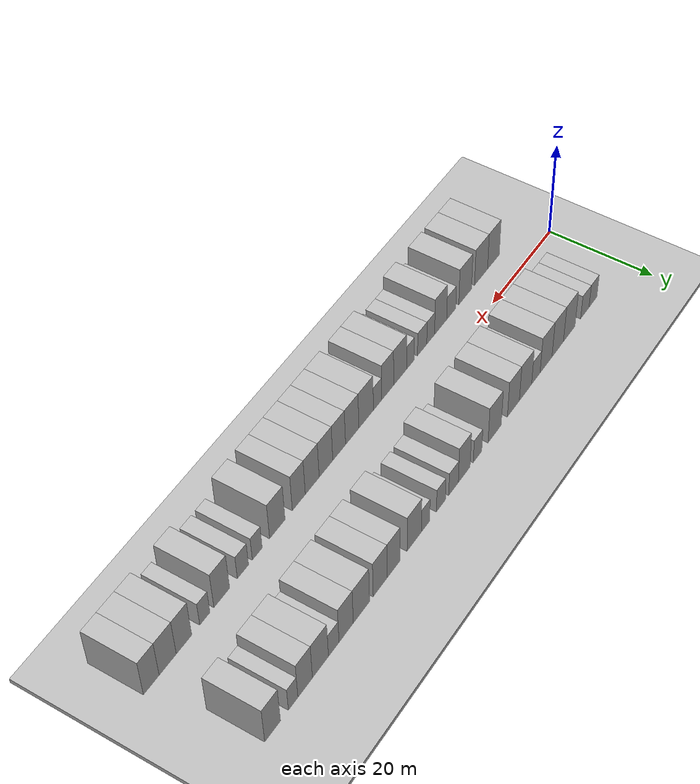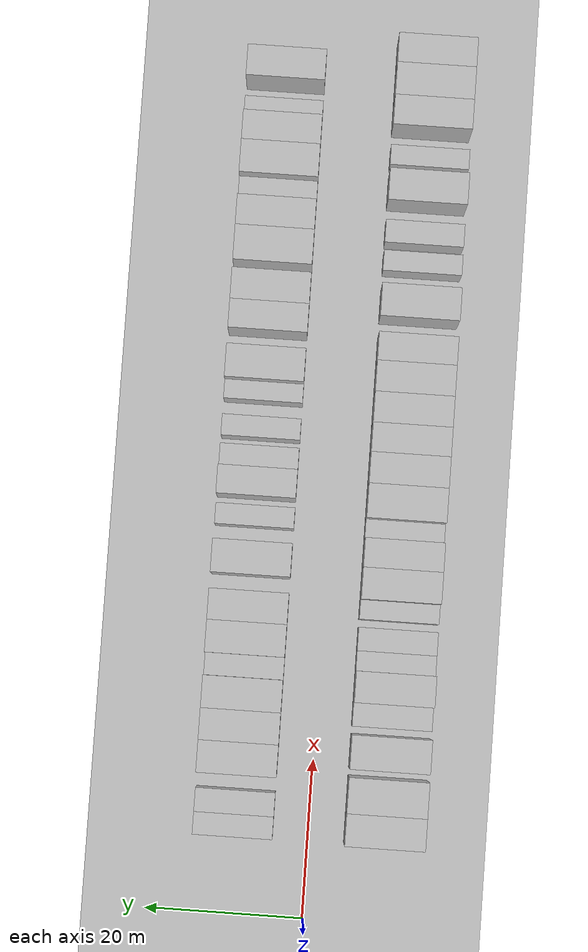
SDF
<sdf version="1.6">
 <world name="default">
  <include><name>ground_plane_1</name><uri>model://HANNAS_ground_plane</uri></include>
  <include>
   <name>ground_plane_2</name>
   <uri>model://HANNAS_ground_plane</uri>
   <pose>100 0 0  0 0 0</pose>
  </include>
  <model name="building_1">
   <static>1</static>
   <pose>11.4120 9.5000 0 0.000000 0.000000 1.570796</pose>
   <link name="link">
    <pose>0 0 3.00 0 0 0</pose>
    <collision name="collision"><geometry><box><size>10.0000 2.8240 6.0000</size></box></geometry></collision>
    <visual name="visual">
     <cast_shadows>0</cast_shadows>
     <geometry><box><size>10.0000 2.8240 6.0000</size></box></geometry>
     <material>
      <script>
       <uri>model://HANNAS_wall/materials/scripts</uri>
       <uri>model://HANNAS_wall/materials/textures</uri>
       <name>vrc/HANNAS_wall</name>
      </script>
     </material>
    </visual>
   </link>
  </model>
  <model name="building_2">
   <static>1</static>
   <pose>14.3173 9.5000 0 0.000000 0.000000 1.570796</pose>
   <link name="link">
    <pose>0 0 3.00 0 0 0</pose>
    <collision name="collision"><geometry><box><size>10.0000 2.9866 6.0000</size></box></geometry></collision>
    <visual name="visual">
     <cast_shadows>0</cast_shadows>
     <geometry><box><size>10.0000 2.9866 6.0000</size></box></geometry>
     <material>
      <script>
       <uri>model://HANNAS_wall/materials/scripts</uri>
       <uri>model://HANNAS_wall/materials/textures</uri>
       <name>vrc/HANNAS_wall</name>
      </script>
     </material>
    </visual>
   </link>
  </model>
  <model name="building_3">
   <static>1</static>
   <pose>19.8253 9.5000 0 0.000000 0.000000 1.570796</pose>
   <link name="link">
    <pose>0 0 4.50 0 0 0</pose>
    <collision name="collision"><geometry><box><size>10.0000 4.0295 9.0000</size></box></geometry></collision>
    <visual name="visual">
     <cast_shadows>0</cast_shadows>
     <geometry><box><size>10.0000 4.0295 9.0000</size></box></geometry>
     <material>
      <script>
       <uri>model://HANNAS_wall/materials/scripts</uri>
       <uri>model://HANNAS_wall/materials/textures</uri>
       <name>vrc/HANNAS_wall</name>
      </script>
     </material>
    </visual>
   </link>
  </model>
  <model name="building_4">
   <static>1</static>
   <pose>23.8167 9.5000 0 0.000000 0.000000 1.570796</pose>
   <link name="link">
    <pose>0 0 4.50 0 0 0</pose>
    <collision name="collision"><geometry><box><size>10.0000 3.9533 9.0000</size></box></geometry></collision>
    <visual name="visual">
     <cast_shadows>0</cast_shadows>
     <geometry><box><size>10.0000 3.9533 9.0000</size></box></geometry>
     <material>
      <script>
       <uri>model://HANNAS_wall/materials/scripts</uri>
       <uri>model://HANNAS_wall/materials/textures</uri>
       <name>vrc/HANNAS_wall</name>
      </script>
     </material>
    </visual>
   </link>
  </model>
  <model name="building_5">
   <static>1</static>
   <pose>27.8208 9.5000 0 0.000000 0.000000 1.570796</pose>
   <link name="link">
    <pose>0 0 4.50 0 0 0</pose>
    <collision name="collision"><geometry><box><size>10.0000 4.0550 9.0000</size></box></geometry></collision>
    <visual name="visual">
     <cast_shadows>0</cast_shadows>
     <geometry><box><size>10.0000 4.0550 9.0000</size></box></geometry>
     <material>
      <script>
       <uri>model://HANNAS_wall/materials/scripts</uri>
       <uri>model://HANNAS_wall/materials/textures</uri>
       <name>vrc/HANNAS_wall</name>
      </script>
     </material>
    </visual>
   </link>
  </model>
  <model name="building_6">
   <static>1</static>
   <pose>31.2606 9.5000 0 0.000000 0.000000 1.570796</pose>
   <link name="link">
    <pose>0 0 3.00 0 0 0</pose>
    <collision name="collision"><geometry><box><size>10.0000 2.8246 6.0000</size></box></geometry></collision>
    <visual name="visual">
     <cast_shadows>0</cast_shadows>
     <geometry><box><size>10.0000 2.8246 6.0000</size></box></geometry>
     <material>
      <script>
       <uri>model://HANNAS_wall/materials/scripts</uri>
       <uri>model://HANNAS_wall/materials/textures</uri>
       <name>vrc/HANNAS_wall</name>
      </script>
     </material>
    </visual>
   </link>
  </model>
  <model name="building_7">
   <static>1</static>
   <pose>34.7075 9.5000 0 0.000000 0.000000 1.570796</pose>
   <link name="link">
    <pose>0 0 4.50 0 0 0</pose>
    <collision name="collision"><geometry><box><size>10.0000 4.0691 9.0000</size></box></geometry></collision>
    <visual name="visual">
     <cast_shadows>0</cast_shadows>
     <geometry><box><size>10.0000 4.0691 9.0000</size></box></geometry>
     <material>
      <script>
       <uri>model://HANNAS_wall/materials/scripts</uri>
       <uri>model://HANNAS_wall/materials/textures</uri>
       <name>vrc/HANNAS_wall</name>
      </script>
     </material>
    </visual>
   </link>
  </model>
  <model name="building_8">
   <static>1</static>
   <pose>38.6930 9.5000 0 0.000000 0.000000 1.570796</pose>
   <link name="link">
    <pose>0 0 4.50 0 0 0</pose>
    <collision name="collision"><geometry><box><size>10.0000 3.9020 9.0000</size></box></geometry></collision>
    <visual name="visual">
     <cast_shadows>0</cast_shadows>
     <geometry><box><size>10.0000 3.9020 9.0000</size></box></geometry>
     <material>
      <script>
       <uri>model://HANNAS_wall/materials/scripts</uri>
       <uri>model://HANNAS_wall/materials/textures</uri>
       <name>vrc/HANNAS_wall</name>
      </script>
     </material>
    </visual>
   </link>
  </model>
  <model name="building_9">
   <static>1</static>
   <pose>44.7458 9.5000 0 0.000000 0.000000 1.570796</pose>
   <link name="link">
    <pose>0 0 4.50 0 0 0</pose>
    <collision name="collision"><geometry><box><size>10.0000 4.2036 9.0000</size></box></geometry></collision>
    <visual name="visual">
     <cast_shadows>0</cast_shadows>
     <geometry><box><size>10.0000 4.2036 9.0000</size></box></geometry>
     <material>
      <script>
       <uri>model://HANNAS_wall/materials/scripts</uri>
       <uri>model://HANNAS_wall/materials/textures</uri>
       <name>vrc/HANNAS_wall</name>
      </script>
     </material>
    </visual>
   </link>
  </model>
  <model name="building_10">
   <static>1</static>
   <pose>50.1704 9.5000 0 0.000000 0.000000 1.570796</pose>
   <link name="link">
    <pose>0 0 3.00 0 0 0</pose>
    <collision name="collision"><geometry><box><size>10.0000 2.6455 6.0000</size></box></geometry></collision>
    <visual name="visual">
     <cast_shadows>0</cast_shadows>
     <geometry><box><size>10.0000 2.6455 6.0000</size></box></geometry>
     <material>
      <script>
       <uri>model://HANNAS_wall/materials/scripts</uri>
       <uri>model://HANNAS_wall/materials/textures</uri>
       <name>vrc/HANNAS_wall</name>
      </script>
     </material>
    </visual>
   </link>
  </model>
  <model name="building_11">
   <static>1</static>
   <pose>54.3020 9.5000 0 0.000000 0.000000 1.570796</pose>
   <link name="link">
    <pose>0 0 4.50 0 0 0</pose>
    <collision name="collision"><geometry><box><size>10.0000 3.6177 9.0000</size></box></geometry></collision>
    <visual name="visual">
     <cast_shadows>0</cast_shadows>
     <geometry><box><size>10.0000 3.6177 9.0000</size></box></geometry>
     <material>
      <script>
       <uri>model://HANNAS_wall/materials/scripts</uri>
       <uri>model://HANNAS_wall/materials/textures</uri>
       <name>vrc/HANNAS_wall</name>
      </script>
     </material>
    </visual>
   </link>
  </model>
  <model name="building_12">
   <static>1</static>
   <pose>57.5705 9.5000 0 0.000000 0.000000 1.570796</pose>
   <link name="link">
    <pose>0 0 3.00 0 0 0</pose>
    <collision name="collision"><geometry><box><size>10.0000 2.9192 6.0000</size></box></geometry></collision>
    <visual name="visual">
     <cast_shadows>0</cast_shadows>
     <geometry><box><size>10.0000 2.9192 6.0000</size></box></geometry>
     <material>
      <script>
       <uri>model://HANNAS_wall/materials/scripts</uri>
       <uri>model://HANNAS_wall/materials/textures</uri>
       <name>vrc/HANNAS_wall</name>
      </script>
     </material>
    </visual>
   </link>
  </model>
  <model name="building_13">
   <static>1</static>
   <pose>61.3767 9.5000 0 0.000000 0.000000 1.570796</pose>
   <link name="link">
    <pose>0 0 3.00 0 0 0</pose>
    <collision name="collision"><geometry><box><size>10.0000 2.6934 6.0000</size></box></geometry></collision>
    <visual name="visual">
     <cast_shadows>0</cast_shadows>
     <geometry><box><size>10.0000 2.6934 6.0000</size></box></geometry>
     <material>
      <script>
       <uri>model://HANNAS_wall/materials/scripts</uri>
       <uri>model://HANNAS_wall/materials/textures</uri>
       <name>vrc/HANNAS_wall</name>
      </script>
     </material>
    </visual>
   </link>
  </model>
  <model name="building_14">
   <static>1</static>
   <pose>65.9254 9.5000 0 0.000000 0.000000 1.570796</pose>
   <link name="link">
    <pose>0 0 3.00 0 0 0</pose>
    <collision name="collision"><geometry><box><size>10.0000 2.4040 6.0000</size></box></geometry></collision>
    <visual name="visual">
     <cast_shadows>0</cast_shadows>
     <geometry><box><size>10.0000 2.4040 6.0000</size></box></geometry>
     <material>
      <script>
       <uri>model://HANNAS_wall/materials/scripts</uri>
       <uri>model://HANNAS_wall/materials/textures</uri>
       <name>vrc/HANNAS_wall</name>
      </script>
     </material>
    </visual>
   </link>
  </model>
  <model name="building_15">
   <static>1</static>
   <pose>69.2323 9.5000 0 0.000000 0.000000 1.570796</pose>
   <link name="link">
    <pose>0 0 4.50 0 0 0</pose>
    <collision name="collision"><geometry><box><size>10.0000 4.2098 9.0000</size></box></geometry></collision>
    <visual name="visual">
     <cast_shadows>0</cast_shadows>
     <geometry><box><size>10.0000 4.2098 9.0000</size></box></geometry>
     <material>
      <script>
       <uri>model://HANNAS_wall/materials/scripts</uri>
       <uri>model://HANNAS_wall/materials/textures</uri>
       <name>vrc/HANNAS_wall</name>
      </script>
     </material>
    </visual>
   </link>
  </model>
  <model name="building_16">
   <static>1</static>
   <pose>75.1610 9.5000 0 0.000000 0.000000 1.570796</pose>
   <link name="link">
    <pose>0 0 4.50 0 0 0</pose>
    <collision name="collision"><geometry><box><size>10.0000 3.6475 9.0000</size></box></geometry></collision>
    <visual name="visual">
     <cast_shadows>0</cast_shadows>
     <geometry><box><size>10.0000 3.6475 9.0000</size></box></geometry>
     <material>
      <script>
       <uri>model://HANNAS_wall/materials/scripts</uri>
       <uri>model://HANNAS_wall/materials/textures</uri>
       <name>vrc/HANNAS_wall</name>
      </script>
     </material>
    </visual>
   </link>
  </model>
  <model name="building_17">
   <static>1</static>
   <pose>78.9682 9.5000 0 0.000000 0.000000 1.570796</pose>
   <link name="link">
    <pose>0 0 4.50 0 0 0</pose>
    <collision name="collision"><geometry><box><size>10.0000 3.9669 9.0000</size></box></geometry></collision>
    <visual name="visual">
     <cast_shadows>0</cast_shadows>
     <geometry><box><size>10.0000 3.9669 9.0000</size></box></geometry>
     <material>
      <script>
       <uri>model://HANNAS_wall/materials/scripts</uri>
       <uri>model://HANNAS_wall/materials/textures</uri>
       <name>vrc/HANNAS_wall</name>
      </script>
     </material>
    </visual>
   </link>
  </model>
  <model name="building_18">
   <static>1</static>
   <pose>84.1796 9.5000 0 0.000000 0.000000 1.570796</pose>
   <link name="link">
    <pose>0 0 4.50 0 0 0</pose>
    <collision name="collision"><geometry><box><size>10.0000 4.4560 9.0000</size></box></geometry></collision>
    <visual name="visual">
     <cast_shadows>0</cast_shadows>
     <geometry><box><size>10.0000 4.4560 9.0000</size></box></geometry>
     <material>
      <script>
       <uri>model://HANNAS_wall/materials/scripts</uri>
       <uri>model://HANNAS_wall/materials/textures</uri>
       <name>vrc/HANNAS_wall</name>
      </script>
     </material>
    </visual>
   </link>
  </model>
  <model name="building_19">
   <static>1</static>
   <pose>88.3378 9.5000 0 0.000000 0.000000 1.570796</pose>
   <link name="link">
    <pose>0 0 4.50 0 0 0</pose>
    <collision name="collision"><geometry><box><size>10.0000 3.8603 9.0000</size></box></geometry></collision>
    <visual name="visual">
     <cast_shadows>0</cast_shadows>
     <geometry><box><size>10.0000 3.8603 9.0000</size></box></geometry>
     <material>
      <script>
       <uri>model://HANNAS_wall/materials/scripts</uri>
       <uri>model://HANNAS_wall/materials/textures</uri>
       <name>vrc/HANNAS_wall</name>
      </script>
     </material>
    </visual>
   </link>
  </model>
  <model name="building_20">
   <static>1</static>
   <pose>91.6720 9.5000 0 0.000000 0.000000 1.570796</pose>
   <link name="link">
    <pose>0 0 3.00 0 0 0</pose>
    <collision name="collision"><geometry><box><size>10.0000 2.8080 6.0000</size></box></geometry></collision>
    <visual name="visual">
     <cast_shadows>0</cast_shadows>
     <geometry><box><size>10.0000 2.8080 6.0000</size></box></geometry>
     <material>
      <script>
       <uri>model://HANNAS_wall/materials/scripts</uri>
       <uri>model://HANNAS_wall/materials/textures</uri>
       <name>vrc/HANNAS_wall</name>
      </script>
     </material>
    </visual>
   </link>
  </model>
  <model name="building_21">
   <static>1</static>
   <pose>95.1774 9.5000 0 0.000000 0.000000 1.570796</pose>
   <link name="link">
    <pose>0 0 4.50 0 0 0</pose>
    <collision name="collision"><geometry><box><size>10.0000 4.2028 9.0000</size></box></geometry></collision>
    <visual name="visual">
     <cast_shadows>0</cast_shadows>
     <geometry><box><size>10.0000 4.2028 9.0000</size></box></geometry>
     <material>
      <script>
       <uri>model://HANNAS_wall/materials/scripts</uri>
       <uri>model://HANNAS_wall/materials/textures</uri>
       <name>vrc/HANNAS_wall</name>
      </script>
     </material>
    </visual>
   </link>
  </model>
  <model name="building_22">
   <static>1</static>
   <pose>99.1581 9.5000 0 0.000000 0.000000 1.570796</pose>
   <link name="link">
    <pose>0 0 4.50 0 0 0</pose>
    <collision name="collision"><geometry><box><size>10.0000 3.7587 9.0000</size></box></geometry></collision>
    <visual name="visual">
     <cast_shadows>0</cast_shadows>
     <geometry><box><size>10.0000 3.7587 9.0000</size></box></geometry>
     <material>
      <script>
       <uri>model://HANNAS_wall/materials/scripts</uri>
       <uri>model://HANNAS_wall/materials/textures</uri>
       <name>vrc/HANNAS_wall</name>
      </script>
     </material>
    </visual>
   </link>
  </model>
  <model name="building_23">
   <static>1</static>
   <pose>102.2509 9.5000 0 0.000000 0.000000 1.570796</pose>
   <link name="link">
    <pose>0 0 3.00 0 0 0</pose>
    <collision name="collision"><geometry><box><size>10.0000 2.4268 6.0000</size></box></geometry></collision>
    <visual name="visual">
     <cast_shadows>0</cast_shadows>
     <geometry><box><size>10.0000 2.4268 6.0000</size></box></geometry>
     <material>
      <script>
       <uri>model://HANNAS_wall/materials/scripts</uri>
       <uri>model://HANNAS_wall/materials/textures</uri>
       <name>vrc/HANNAS_wall</name>
      </script>
     </material>
    </visual>
   </link>
  </model>
  <model name="building_24">
   <static>1</static>
   <pose>107.4302 9.5000 0 0.000000 0.000000 1.570796</pose>
   <link name="link">
    <pose>0 0 4.50 0 0 0</pose>
    <collision name="collision"><geometry><box><size>10.0000 3.9319 9.0000</size></box></geometry></collision>
    <visual name="visual">
     <cast_shadows>0</cast_shadows>
     <geometry><box><size>10.0000 3.9319 9.0000</size></box></geometry>
     <material>
      <script>
       <uri>model://HANNAS_wall/materials/scripts</uri>
       <uri>model://HANNAS_wall/materials/textures</uri>
       <name>vrc/HANNAS_wall</name>
      </script>
     </material>
    </visual>
   </link>
  </model>
  <model name="building_49">
   <static>1</static>
   <pose>12.0125 -9.5000 0 0.000000 0.000000 1.570796</pose>
   <link name="link">
    <pose>0 0 4.50 0 0 0</pose>
    <collision name="collision"><geometry><box><size>10.0000 4.0250 9.0000</size></box></geometry></collision>
    <visual name="visual">
     <cast_shadows>0</cast_shadows>
     <geometry><box><size>10.0000 4.0250 9.0000</size></box></geometry>
     <material>
      <script>
       <uri>model://HANNAS_wall/materials/scripts</uri>
       <uri>model://HANNAS_wall/materials/textures</uri>
       <name>vrc/HANNAS_wall</name>
      </script>
     </material>
    </visual>
   </link>
  </model>
  <model name="building_50">
   <static>1</static>
   <pose>16.2547 -9.5000 0 0.000000 0.000000 1.570796</pose>
   <link name="link">
    <pose>0 0 4.50 0 0 0</pose>
    <collision name="collision"><geometry><box><size>10.0000 4.4594 9.0000</size></box></geometry></collision>
    <visual name="visual">
     <cast_shadows>0</cast_shadows>
     <geometry><box><size>10.0000 4.4594 9.0000</size></box></geometry>
     <material>
      <script>
       <uri>model://HANNAS_wall/materials/scripts</uri>
       <uri>model://HANNAS_wall/materials/textures</uri>
       <name>vrc/HANNAS_wall</name>
      </script>
     </material>
    </visual>
   </link>
  </model>
  <model name="building_51">
   <static>1</static>
   <pose>21.6102 -9.5000 0 0.000000 0.000000 1.570796</pose>
   <link name="link">
    <pose>0 0 4.50 0 0 0</pose>
    <collision name="collision"><geometry><box><size>10.0000 4.2515 9.0000</size></box></geometry></collision>
    <visual name="visual">
     <cast_shadows>0</cast_shadows>
     <geometry><box><size>10.0000 4.2515 9.0000</size></box></geometry>
     <material>
      <script>
       <uri>model://HANNAS_wall/materials/scripts</uri>
       <uri>model://HANNAS_wall/materials/textures</uri>
       <name>vrc/HANNAS_wall</name>
      </script>
     </material>
    </visual>
   </link>
  </model>
  <model name="building_52">
   <static>1</static>
   <pose>26.2296 -9.5000 0 0.000000 0.000000 1.570796</pose>
   <link name="link">
    <pose>0 0 3.00 0 0 0</pose>
    <collision name="collision"><geometry><box><size>10.0000 2.9874 6.0000</size></box></geometry></collision>
    <visual name="visual">
     <cast_shadows>0</cast_shadows>
     <geometry><box><size>10.0000 2.9874 6.0000</size></box></geometry>
     <material>
      <script>
       <uri>model://HANNAS_wall/materials/scripts</uri>
       <uri>model://HANNAS_wall/materials/textures</uri>
       <name>vrc/HANNAS_wall</name>
      </script>
     </material>
    </visual>
   </link>
  </model>
  <model name="building_53">
   <static>1</static>
   <pose>29.6846 -9.5000 0 0.000000 0.000000 1.570796</pose>
   <link name="link">
    <pose>0 0 4.50 0 0 0</pose>
    <collision name="collision"><geometry><box><size>10.0000 3.9226 9.0000</size></box></geometry></collision>
    <visual name="visual">
     <cast_shadows>0</cast_shadows>
     <geometry><box><size>10.0000 3.9226 9.0000</size></box></geometry>
     <material>
      <script>
       <uri>model://HANNAS_wall/materials/scripts</uri>
       <uri>model://HANNAS_wall/materials/textures</uri>
       <name>vrc/HANNAS_wall</name>
      </script>
     </material>
    </visual>
   </link>
  </model>
  <model name="building_54">
   <static>1</static>
   <pose>32.9074 -9.5000 0 0.000000 0.000000 1.570796</pose>
   <link name="link">
    <pose>0 0 3.00 0 0 0</pose>
    <collision name="collision"><geometry><box><size>10.0000 2.5228 6.0000</size></box></geometry></collision>
    <visual name="visual">
     <cast_shadows>0</cast_shadows>
     <geometry><box><size>10.0000 2.5228 6.0000</size></box></geometry>
     <material>
      <script>
       <uri>model://HANNAS_wall/materials/scripts</uri>
       <uri>model://HANNAS_wall/materials/textures</uri>
       <name>vrc/HANNAS_wall</name>
      </script>
     </material>
    </visual>
   </link>
  </model>
  <model name="building_55">
   <static>1</static>
   <pose>35.6420 -9.5000 0 0.000000 0.000000 1.570796</pose>
   <link name="link">
    <pose>0 0 3.00 0 0 0</pose>
    <collision name="collision"><geometry><box><size>10.0000 2.9465 6.0000</size></box></geometry></collision>
    <visual name="visual">
     <cast_shadows>0</cast_shadows>
     <geometry><box><size>10.0000 2.9465 6.0000</size></box></geometry>
     <material>
      <script>
       <uri>model://HANNAS_wall/materials/scripts</uri>
       <uri>model://HANNAS_wall/materials/textures</uri>
       <name>vrc/HANNAS_wall</name>
      </script>
     </material>
    </visual>
   </link>
  </model>
  <model name="building_56">
   <static>1</static>
   <pose>39.3429 -9.5000 0 0.000000 0.000000 1.570796</pose>
   <link name="link">
    <pose>0 0 3.00 0 0 0</pose>
    <collision name="collision"><geometry><box><size>10.0000 2.4554 6.0000</size></box></geometry></collision>
    <visual name="visual">
     <cast_shadows>0</cast_shadows>
     <geometry><box><size>10.0000 2.4554 6.0000</size></box></geometry>
     <material>
      <script>
       <uri>model://HANNAS_wall/materials/scripts</uri>
       <uri>model://HANNAS_wall/materials/textures</uri>
       <name>vrc/HANNAS_wall</name>
      </script>
     </material>
    </visual>
   </link>
  </model>
  <model name="building_57">
   <static>1</static>
   <pose>42.5651 -9.5000 0 0.000000 0.000000 1.570796</pose>
   <link name="link">
    <pose>0 0 4.50 0 0 0</pose>
    <collision name="collision"><geometry><box><size>10.0000 3.9889 9.0000</size></box></geometry></collision>
    <visual name="visual">
     <cast_shadows>0</cast_shadows>
     <geometry><box><size>10.0000 3.9889 9.0000</size></box></geometry>
     <material>
      <script>
       <uri>model://HANNAS_wall/materials/scripts</uri>
       <uri>model://HANNAS_wall/materials/textures</uri>
       <name>vrc/HANNAS_wall</name>
      </script>
     </material>
    </visual>
   </link>
  </model>
  <model name="building_58">
   <static>1</static>
   <pose>46.3990 -9.5000 0 0.000000 0.000000 1.570796</pose>
   <link name="link">
    <pose>0 0 4.50 0 0 0</pose>
    <collision name="collision"><geometry><box><size>10.0000 3.6790 9.0000</size></box></geometry></collision>
    <visual name="visual">
     <cast_shadows>0</cast_shadows>
     <geometry><box><size>10.0000 3.6790 9.0000</size></box></geometry>
     <material>
      <script>
       <uri>model://HANNAS_wall/materials/scripts</uri>
       <uri>model://HANNAS_wall/materials/textures</uri>
       <name>vrc/HANNAS_wall</name>
      </script>
     </material>
    </visual>
   </link>
  </model>
  <model name="building_59">
   <static>1</static>
   <pose>49.4803 -9.5000 0 0.000000 0.000000 1.570796</pose>
   <link name="link">
    <pose>0 0 3.00 0 0 0</pose>
    <collision name="collision"><geometry><box><size>10.0000 2.4836 6.0000</size></box></geometry></collision>
    <visual name="visual">
     <cast_shadows>0</cast_shadows>
     <geometry><box><size>10.0000 2.4836 6.0000</size></box></geometry>
     <material>
      <script>
       <uri>model://HANNAS_wall/materials/scripts</uri>
       <uri>model://HANNAS_wall/materials/textures</uri>
       <name>vrc/HANNAS_wall</name>
      </script>
     </material>
    </visual>
   </link>
  </model>
  <model name="building_60">
   <static>1</static>
   <pose>52.8970 -9.5000 0 0.000000 0.000000 1.570796</pose>
   <link name="link">
    <pose>0 0 4.50 0 0 0</pose>
    <collision name="collision"><geometry><box><size>10.0000 4.3498 9.0000</size></box></geometry></collision>
    <visual name="visual">
     <cast_shadows>0</cast_shadows>
     <geometry><box><size>10.0000 4.3498 9.0000</size></box></geometry>
     <material>
      <script>
       <uri>model://HANNAS_wall/materials/scripts</uri>
       <uri>model://HANNAS_wall/materials/textures</uri>
       <name>vrc/HANNAS_wall</name>
      </script>
     </material>
    </visual>
   </link>
  </model>
  <model name="building_61">
   <static>1</static>
   <pose>57.0367 -9.5000 0 0.000000 0.000000 1.570796</pose>
   <link name="link">
    <pose>0 0 4.50 0 0 0</pose>
    <collision name="collision"><geometry><box><size>10.0000 3.9296 9.0000</size></box></geometry></collision>
    <visual name="visual">
     <cast_shadows>0</cast_shadows>
     <geometry><box><size>10.0000 3.9296 9.0000</size></box></geometry>
     <material>
      <script>
       <uri>model://HANNAS_wall/materials/scripts</uri>
       <uri>model://HANNAS_wall/materials/textures</uri>
       <name>vrc/HANNAS_wall</name>
      </script>
     </material>
    </visual>
   </link>
  </model>
  <model name="building_62">
   <static>1</static>
   <pose>60.8553 -9.5000 0 0.000000 0.000000 1.570796</pose>
   <link name="link">
    <pose>0 0 4.50 0 0 0</pose>
    <collision name="collision"><geometry><box><size>10.0000 3.7076 9.0000</size></box></geometry></collision>
    <visual name="visual">
     <cast_shadows>0</cast_shadows>
     <geometry><box><size>10.0000 3.7076 9.0000</size></box></geometry>
     <material>
      <script>
       <uri>model://HANNAS_wall/materials/scripts</uri>
       <uri>model://HANNAS_wall/materials/textures</uri>
       <name>vrc/HANNAS_wall</name>
      </script>
     </material>
    </visual>
   </link>
  </model>
  <model name="building_63">
   <static>1</static>
   <pose>64.6545 -9.5000 0 0.000000 0.000000 1.570796</pose>
   <link name="link">
    <pose>0 0 4.50 0 0 0</pose>
    <collision name="collision"><geometry><box><size>10.0000 3.8907 9.0000</size></box></geometry></collision>
    <visual name="visual">
     <cast_shadows>0</cast_shadows>
     <geometry><box><size>10.0000 3.8907 9.0000</size></box></geometry>
     <material>
      <script>
       <uri>model://HANNAS_wall/materials/scripts</uri>
       <uri>model://HANNAS_wall/materials/textures</uri>
       <name>vrc/HANNAS_wall</name>
      </script>
     </material>
    </visual>
   </link>
  </model>
  <model name="building_64">
   <static>1</static>
   <pose>68.5563 -9.5000 0 0.000000 0.000000 1.570796</pose>
   <link name="link">
    <pose>0 0 4.50 0 0 0</pose>
    <collision name="collision"><geometry><box><size>10.0000 3.9128 9.0000</size></box></geometry></collision>
    <visual name="visual">
     <cast_shadows>0</cast_shadows>
     <geometry><box><size>10.0000 3.9128 9.0000</size></box></geometry>
     <material>
      <script>
       <uri>model://HANNAS_wall/materials/scripts</uri>
       <uri>model://HANNAS_wall/materials/textures</uri>
       <name>vrc/HANNAS_wall</name>
      </script>
     </material>
    </visual>
   </link>
  </model>
  <model name="building_65">
   <static>1</static>
   <pose>72.3182 -9.5000 0 0.000000 0.000000 1.570796</pose>
   <link name="link">
    <pose>0 0 4.50 0 0 0</pose>
    <collision name="collision"><geometry><box><size>10.0000 3.6110 9.0000</size></box></geometry></collision>
    <visual name="visual">
     <cast_shadows>0</cast_shadows>
     <geometry><box><size>10.0000 3.6110 9.0000</size></box></geometry>
     <material>
      <script>
       <uri>model://HANNAS_wall/materials/scripts</uri>
       <uri>model://HANNAS_wall/materials/textures</uri>
       <name>vrc/HANNAS_wall</name>
      </script>
     </material>
    </visual>
   </link>
  </model>
  <model name="building_66">
   <static>1</static>
   <pose>78.2149 -9.5000 0 0.000000 0.000000 1.570796</pose>
   <link name="link">
    <pose>0 0 4.50 0 0 0</pose>
    <collision name="collision"><geometry><box><size>10.0000 4.1823 9.0000</size></box></geometry></collision>
    <visual name="visual">
     <cast_shadows>0</cast_shadows>
     <geometry><box><size>10.0000 4.1823 9.0000</size></box></geometry>
     <material>
      <script>
       <uri>model://HANNAS_wall/materials/scripts</uri>
       <uri>model://HANNAS_wall/materials/textures</uri>
       <name>vrc/HANNAS_wall</name>
      </script>
     </material>
    </visual>
   </link>
  </model>
  <model name="building_67">
   <static>1</static>
   <pose>83.6147 -9.5000 0 0.000000 0.000000 1.570796</pose>
   <link name="link">
    <pose>0 0 3.00 0 0 0</pose>
    <collision name="collision"><geometry><box><size>10.0000 2.6173 6.0000</size></box></geometry></collision>
    <visual name="visual">
     <cast_shadows>0</cast_shadows>
     <geometry><box><size>10.0000 2.6173 6.0000</size></box></geometry>
     <material>
      <script>
       <uri>model://HANNAS_wall/materials/scripts</uri>
       <uri>model://HANNAS_wall/materials/textures</uri>
       <name>vrc/HANNAS_wall</name>
      </script>
     </material>
    </visual>
   </link>
  </model>
  <model name="building_68">
   <static>1</static>
   <pose>87.3883 -9.5000 0 0.000000 0.000000 1.570796</pose>
   <link name="link">
    <pose>0 0 3.00 0 0 0</pose>
    <collision name="collision"><geometry><box><size>10.0000 2.9300 6.0000</size></box></geometry></collision>
    <visual name="visual">
     <cast_shadows>0</cast_shadows>
     <geometry><box><size>10.0000 2.9300 6.0000</size></box></geometry>
     <material>
      <script>
       <uri>model://HANNAS_wall/materials/scripts</uri>
       <uri>model://HANNAS_wall/materials/textures</uri>
       <name>vrc/HANNAS_wall</name>
      </script>
     </material>
    </visual>
   </link>
  </model>
  <model name="building_69">
   <static>1</static>
   <pose>92.8749 -9.5000 0 0.000000 0.000000 1.570796</pose>
   <link name="link">
    <pose>0 0 4.50 0 0 0</pose>
    <collision name="collision"><geometry><box><size>10.0000 4.0431 9.0000</size></box></geometry></collision>
    <visual name="visual">
     <cast_shadows>0</cast_shadows>
     <geometry><box><size>10.0000 4.0431 9.0000</size></box></geometry>
     <material>
      <script>
       <uri>model://HANNAS_wall/materials/scripts</uri>
       <uri>model://HANNAS_wall/materials/textures</uri>
       <name>vrc/HANNAS_wall</name>
      </script>
     </material>
    </visual>
   </link>
  </model>
  <model name="building_70">
   <static>1</static>
   <pose>97.1820 -9.5000 0 0.000000 0.000000 1.570796</pose>
   <link name="link">
    <pose>0 0 3.00 0 0 0</pose>
    <collision name="collision"><geometry><box><size>10.0000 2.5712 6.0000</size></box></geometry></collision>
    <visual name="visual">
     <cast_shadows>0</cast_shadows>
     <geometry><box><size>10.0000 2.5712 6.0000</size></box></geometry>
     <material>
      <script>
       <uri>model://HANNAS_wall/materials/scripts</uri>
       <uri>model://HANNAS_wall/materials/textures</uri>
       <name>vrc/HANNAS_wall</name>
      </script>
     </material>
    </visual>
   </link>
  </model>
  <model name="building_71">
   <static>1</static>
   <pose>102.3761 -9.5000 0 0.000000 0.000000 1.570796</pose>
   <link name="link">
    <pose>0 0 4.50 0 0 0</pose>
    <collision name="collision"><geometry><box><size>10.0000 3.8168 9.0000</size></box></geometry></collision>
    <visual name="visual">
     <cast_shadows>0</cast_shadows>
     <geometry><box><size>10.0000 3.8168 9.0000</size></box></geometry>
     <material>
      <script>
       <uri>model://HANNAS_wall/materials/scripts</uri>
       <uri>model://HANNAS_wall/materials/textures</uri>
       <name>vrc/HANNAS_wall</name>
      </script>
     </material>
    </visual>
   </link>
  </model>
  <model name="building_72">
   <static>1</static>
   <pose>106.3669 -9.5000 0 0.000000 0.000000 1.570796</pose>
   <link name="link">
    <pose>0 0 4.50 0 0 0</pose>
    <collision name="collision"><geometry><box><size>10.0000 4.1648 9.0000</size></box></geometry></collision>
    <visual name="visual">
     <cast_shadows>0</cast_shadows>
     <geometry><box><size>10.0000 4.1648 9.0000</size></box></geometry>
     <material>
      <script>
       <uri>model://HANNAS_wall/materials/scripts</uri>
       <uri>model://HANNAS_wall/materials/textures</uri>
       <name>vrc/HANNAS_wall</name>
      </script>
     </material>
    </visual>
   </link>
  </model>
  <model name="building_73">
   <static>1</static>
   <pose>110.3328 -9.5000 0 0.000000 0.000000 1.570796</pose>
   <link name="link">
    <pose>0 0 4.50 0 0 0</pose>
    <collision name="collision"><geometry><box><size>10.0000 3.7671 9.0000</size></box></geometry></collision>
    <visual name="visual">
     <cast_shadows>0</cast_shadows>
     <geometry><box><size>10.0000 3.7671 9.0000</size></box></geometry>
     <material>
      <script>
       <uri>model://HANNAS_wall/materials/scripts</uri>
       <uri>model://HANNAS_wall/materials/textures</uri>
       <name>vrc/HANNAS_wall</name>
      </script>
     </material>
    </visual>
   </link>
  </model>
 </world>
</sdf>
